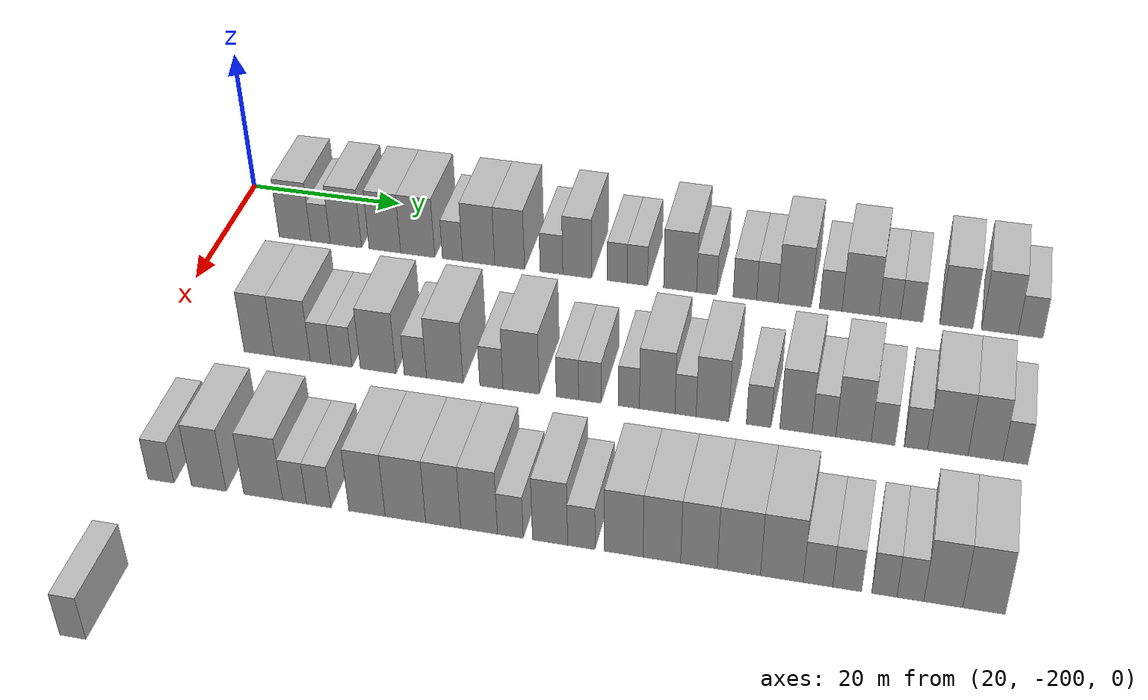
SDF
<sdf version="1.6">
 <world name="default">
  <model name="building_49">
   <static>1</static>
   <pose>25.0000 -190.7488 0 0.000000 0.000000 0.000000</pose>
   <link name="link">
    <pose>0 0 4.50 0 0 0</pose>
    <collision name="collision"><geometry><box><size>10.0000 4.2268 9.0000</size></box></geometry></collision>
    <visual name="visual">
     <cast_shadows>0</cast_shadows>
     <geometry><box><size>10.0000 4.2268 9.0000</size></box></geometry>
     <material>
      <script>
       <uri>model://HANNAS_wall/materials/scripts</uri>
       <uri>model://HANNAS_wall/materials/textures</uri>
       <name>vrc/HANNAS_wall</name>
      </script>
     </material>
    </visual>
   </link>
  </model>
  <model name="building_50">
   <static>1</static>
   <pose>25.0000 -187.3405 0 0.000000 0.000000 0.000000</pose>
   <link name="link">
    <pose>0 0 3.00 0 0 0</pose>
    <collision name="collision"><geometry><box><size>10.0000 2.5898 6.0000</size></box></geometry></collision>
    <visual name="visual">
     <cast_shadows>0</cast_shadows>
     <geometry><box><size>10.0000 2.5898 6.0000</size></box></geometry>
     <material>
      <script>
       <uri>model://HANNAS_wall/materials/scripts</uri>
       <uri>model://HANNAS_wall/materials/textures</uri>
       <name>vrc/HANNAS_wall</name>
      </script>
     </material>
    </visual>
   </link>
  </model>
  <model name="building_51">
   <static>1</static>
   <pose>25.0000 -183.9732 0 0.000000 0.000000 0.000000</pose>
   <link name="link">
    <pose>0 0 4.50 0 0 0</pose>
    <collision name="collision"><geometry><box><size>10.0000 4.1448 9.0000</size></box></geometry></collision>
    <visual name="visual">
     <cast_shadows>0</cast_shadows>
     <geometry><box><size>10.0000 4.1448 9.0000</size></box></geometry>
     <material>
      <script>
       <uri>model://HANNAS_wall/materials/scripts</uri>
       <uri>model://HANNAS_wall/materials/textures</uri>
       <name>vrc/HANNAS_wall</name>
      </script>
     </material>
    </visual>
   </link>
  </model>
  <model name="building_52">
   <static>1</static>
   <pose>25.0000 -178.8292 0 0.000000 0.000000 0.000000</pose>
   <link name="link">
    <pose>0 0 4.50 0 0 0</pose>
    <collision name="collision"><geometry><box><size>10.0000 4.1430 9.0000</size></box></geometry></collision>
    <visual name="visual">
     <cast_shadows>0</cast_shadows>
     <geometry><box><size>10.0000 4.1430 9.0000</size></box></geometry>
     <material>
      <script>
       <uri>model://HANNAS_wall/materials/scripts</uri>
       <uri>model://HANNAS_wall/materials/textures</uri>
       <name>vrc/HANNAS_wall</name>
      </script>
     </material>
    </visual>
   </link>
  </model>
  <model name="building_53">
   <static>1</static>
   <pose>25.0000 -174.5277 0 0.000000 0.000000 0.000000</pose>
   <link name="link">
    <pose>0 0 4.50 0 0 0</pose>
    <collision name="collision"><geometry><box><size>10.0000 4.4599 9.0000</size></box></geometry></collision>
    <visual name="visual">
     <cast_shadows>0</cast_shadows>
     <geometry><box><size>10.0000 4.4599 9.0000</size></box></geometry>
     <material>
      <script>
       <uri>model://HANNAS_wall/materials/scripts</uri>
       <uri>model://HANNAS_wall/materials/textures</uri>
       <name>vrc/HANNAS_wall</name>
      </script>
     </material>
    </visual>
   </link>
  </model>
  <model name="building_54">
   <static>1</static>
   <pose>25.0000 -169.9926 0 0.000000 0.000000 0.000000</pose>
   <link name="link">
    <pose>0 0 3.00 0 0 0</pose>
    <collision name="collision"><geometry><box><size>10.0000 2.6104 6.0000</size></box></geometry></collision>
    <visual name="visual">
     <cast_shadows>0</cast_shadows>
     <geometry><box><size>10.0000 2.6104 6.0000</size></box></geometry>
     <material>
      <script>
       <uri>model://HANNAS_wall/materials/scripts</uri>
       <uri>model://HANNAS_wall/materials/textures</uri>
       <name>vrc/HANNAS_wall</name>
      </script>
     </material>
    </visual>
   </link>
  </model>
  <model name="building_55">
   <static>1</static>
   <pose>25.0000 -166.6092 0 0.000000 0.000000 0.000000</pose>
   <link name="link">
    <pose>0 0 4.50 0 0 0</pose>
    <collision name="collision"><geometry><box><size>10.0000 4.1563 9.0000</size></box></geometry></collision>
    <visual name="visual">
     <cast_shadows>0</cast_shadows>
     <geometry><box><size>10.0000 4.1563 9.0000</size></box></geometry>
     <material>
      <script>
       <uri>model://HANNAS_wall/materials/scripts</uri>
       <uri>model://HANNAS_wall/materials/textures</uri>
       <name>vrc/HANNAS_wall</name>
      </script>
     </material>
    </visual>
   </link>
  </model>
  <model name="building_56">
   <static>1</static>
   <pose>25.0000 -162.6139 0 0.000000 0.000000 0.000000</pose>
   <link name="link">
    <pose>0 0 4.50 0 0 0</pose>
    <collision name="collision"><geometry><box><size>10.0000 3.8343 9.0000</size></box></geometry></collision>
    <visual name="visual">
     <cast_shadows>0</cast_shadows>
     <geometry><box><size>10.0000 3.8343 9.0000</size></box></geometry>
     <material>
      <script>
       <uri>model://HANNAS_wall/materials/scripts</uri>
       <uri>model://HANNAS_wall/materials/textures</uri>
       <name>vrc/HANNAS_wall</name>
      </script>
     </material>
    </visual>
   </link>
  </model>
  <model name="building_57">
   <static>1</static>
   <pose>25.0000 -157.2575 0 0.000000 0.000000 0.000000</pose>
   <link name="link">
    <pose>0 0 3.00 0 0 0</pose>
    <collision name="collision"><geometry><box><size>10.0000 2.8785 6.0000</size></box></geometry></collision>
    <visual name="visual">
     <cast_shadows>0</cast_shadows>
     <geometry><box><size>10.0000 2.8785 6.0000</size></box></geometry>
     <material>
      <script>
       <uri>model://HANNAS_wall/materials/scripts</uri>
       <uri>model://HANNAS_wall/materials/textures</uri>
       <name>vrc/HANNAS_wall</name>
      </script>
     </material>
    </visual>
   </link>
  </model>
  <model name="building_58">
   <static>1</static>
   <pose>25.0000 -153.9972 0 0.000000 0.000000 0.000000</pose>
   <link name="link">
    <pose>0 0 4.50 0 0 0</pose>
    <collision name="collision"><geometry><box><size>10.0000 3.6422 9.0000</size></box></geometry></collision>
    <visual name="visual">
     <cast_shadows>0</cast_shadows>
     <geometry><box><size>10.0000 3.6422 9.0000</size></box></geometry>
     <material>
      <script>
       <uri>model://HANNAS_wall/materials/scripts</uri>
       <uri>model://HANNAS_wall/materials/textures</uri>
       <name>vrc/HANNAS_wall</name>
      </script>
     </material>
    </visual>
   </link>
  </model>
  <model name="building_59">
   <static>1</static>
   <pose>25.0000 -148.9293 0 0.000000 0.000000 0.000000</pose>
   <link name="link">
    <pose>0 0 3.00 0 0 0</pose>
    <collision name="collision"><geometry><box><size>10.0000 2.4935 6.0000</size></box></geometry></collision>
    <visual name="visual">
     <cast_shadows>0</cast_shadows>
     <geometry><box><size>10.0000 2.4935 6.0000</size></box></geometry>
     <material>
      <script>
       <uri>model://HANNAS_wall/materials/scripts</uri>
       <uri>model://HANNAS_wall/materials/textures</uri>
       <name>vrc/HANNAS_wall</name>
      </script>
     </material>
    </visual>
   </link>
  </model>
  <model name="building_60">
   <static>1</static>
   <pose>25.0000 -146.4067 0 0.000000 0.000000 0.000000</pose>
   <link name="link">
    <pose>0 0 3.00 0 0 0</pose>
    <collision name="collision"><geometry><box><size>10.0000 2.5516 6.0000</size></box></geometry></collision>
    <visual name="visual">
     <cast_shadows>0</cast_shadows>
     <geometry><box><size>10.0000 2.5516 6.0000</size></box></geometry>
     <material>
      <script>
       <uri>model://HANNAS_wall/materials/scripts</uri>
       <uri>model://HANNAS_wall/materials/textures</uri>
       <name>vrc/HANNAS_wall</name>
      </script>
     </material>
    </visual>
   </link>
  </model>
  <model name="building_61">
   <static>1</static>
   <pose>25.0000 -141.0756 0 0.000000 0.000000 0.000000</pose>
   <link name="link">
    <pose>0 0 4.50 0 0 0</pose>
    <collision name="collision"><geometry><box><size>10.0000 4.1107 9.0000</size></box></geometry></collision>
    <visual name="visual">
     <cast_shadows>0</cast_shadows>
     <geometry><box><size>10.0000 4.1107 9.0000</size></box></geometry>
     <material>
      <script>
       <uri>model://HANNAS_wall/materials/scripts</uri>
       <uri>model://HANNAS_wall/materials/textures</uri>
       <name>vrc/HANNAS_wall</name>
      </script>
     </material>
    </visual>
   </link>
  </model>
  <model name="building_62">
   <static>1</static>
   <pose>25.0000 -137.7687 0 0.000000 0.000000 0.000000</pose>
   <link name="link">
    <pose>0 0 3.00 0 0 0</pose>
    <collision name="collision"><geometry><box><size>10.0000 2.5029 6.0000</size></box></geometry></collision>
    <visual name="visual">
     <cast_shadows>0</cast_shadows>
     <geometry><box><size>10.0000 2.5029 6.0000</size></box></geometry>
     <material>
      <script>
       <uri>model://HANNAS_wall/materials/scripts</uri>
       <uri>model://HANNAS_wall/materials/textures</uri>
       <name>vrc/HANNAS_wall</name>
      </script>
     </material>
    </visual>
   </link>
  </model>
  <model name="building_63">
   <static>1</static>
   <pose>25.0000 -133.0744 0 0.000000 0.000000 0.000000</pose>
   <link name="link">
    <pose>0 0 3.00 0 0 0</pose>
    <collision name="collision"><geometry><box><size>10.0000 2.8857 6.0000</size></box></geometry></collision>
    <visual name="visual">
     <cast_shadows>0</cast_shadows>
     <geometry><box><size>10.0000 2.8857 6.0000</size></box></geometry>
     <material>
      <script>
       <uri>model://HANNAS_wall/materials/scripts</uri>
       <uri>model://HANNAS_wall/materials/textures</uri>
       <name>vrc/HANNAS_wall</name>
      </script>
     </material>
    </visual>
   </link>
  </model>
  <model name="building_64">
   <static>1</static>
   <pose>25.0000 -130.3271 0 0.000000 0.000000 0.000000</pose>
   <link name="link">
    <pose>0 0 3.00 0 0 0</pose>
    <collision name="collision"><geometry><box><size>10.0000 2.6090 6.0000</size></box></geometry></collision>
    <visual name="visual">
     <cast_shadows>0</cast_shadows>
     <geometry><box><size>10.0000 2.6090 6.0000</size></box></geometry>
     <material>
      <script>
       <uri>model://HANNAS_wall/materials/scripts</uri>
       <uri>model://HANNAS_wall/materials/textures</uri>
       <name>vrc/HANNAS_wall</name>
      </script>
     </material>
    </visual>
   </link>
  </model>
  <model name="building_65">
   <static>1</static>
   <pose>25.0000 -126.9975 0 0.000000 0.000000 0.000000</pose>
   <link name="link">
    <pose>0 0 4.50 0 0 0</pose>
    <collision name="collision"><geometry><box><size>10.0000 4.0501 9.0000</size></box></geometry></collision>
    <visual name="visual">
     <cast_shadows>0</cast_shadows>
     <geometry><box><size>10.0000 4.0501 9.0000</size></box></geometry>
     <material>
      <script>
       <uri>model://HANNAS_wall/materials/scripts</uri>
       <uri>model://HANNAS_wall/materials/textures</uri>
       <name>vrc/HANNAS_wall</name>
      </script>
     </material>
    </visual>
   </link>
  </model>
  <model name="building_66">
   <static>1</static>
   <pose>25.0000 -122.6109 0 0.000000 0.000000 0.000000</pose>
   <link name="link">
    <pose>0 0 3.00 0 0 0</pose>
    <collision name="collision"><geometry><box><size>10.0000 2.7231 6.0000</size></box></geometry></collision>
    <visual name="visual">
     <cast_shadows>0</cast_shadows>
     <geometry><box><size>10.0000 2.7231 6.0000</size></box></geometry>
     <material>
      <script>
       <uri>model://HANNAS_wall/materials/scripts</uri>
       <uri>model://HANNAS_wall/materials/textures</uri>
       <name>vrc/HANNAS_wall</name>
      </script>
     </material>
    </visual>
   </link>
  </model>
  <model name="building_67">
   <static>1</static>
   <pose>25.0000 -119.0445 0 0.000000 0.000000 0.000000</pose>
   <link name="link">
    <pose>0 0 4.50 0 0 0</pose>
    <collision name="collision"><geometry><box><size>10.0000 4.4096 9.0000</size></box></geometry></collision>
    <visual name="visual">
     <cast_shadows>0</cast_shadows>
     <geometry><box><size>10.0000 4.4096 9.0000</size></box></geometry>
     <material>
      <script>
       <uri>model://HANNAS_wall/materials/scripts</uri>
       <uri>model://HANNAS_wall/materials/textures</uri>
       <name>vrc/HANNAS_wall</name>
      </script>
     </material>
    </visual>
   </link>
  </model>
  <model name="building_68">
   <static>1</static>
   <pose>25.0000 -115.5392 0 0.000000 0.000000 0.000000</pose>
   <link name="link">
    <pose>0 0 3.00 0 0 0</pose>
    <collision name="collision"><geometry><box><size>10.0000 2.6010 6.0000</size></box></geometry></collision>
    <visual name="visual">
     <cast_shadows>0</cast_shadows>
     <geometry><box><size>10.0000 2.6010 6.0000</size></box></geometry>
     <material>
      <script>
       <uri>model://HANNAS_wall/materials/scripts</uri>
       <uri>model://HANNAS_wall/materials/textures</uri>
       <name>vrc/HANNAS_wall</name>
      </script>
     </material>
    </visual>
   </link>
  </model>
  <model name="building_69">
   <static>1</static>
   <pose>25.0000 -112.8954 0 0.000000 0.000000 0.000000</pose>
   <link name="link">
    <pose>0 0 3.00 0 0 0</pose>
    <collision name="collision"><geometry><box><size>10.0000 2.6867 6.0000</size></box></geometry></collision>
    <visual name="visual">
     <cast_shadows>0</cast_shadows>
     <geometry><box><size>10.0000 2.6867 6.0000</size></box></geometry>
     <material>
      <script>
       <uri>model://HANNAS_wall/materials/scripts</uri>
       <uri>model://HANNAS_wall/materials/textures</uri>
       <name>vrc/HANNAS_wall</name>
      </script>
     </material>
    </visual>
   </link>
  </model>
  <model name="building_70">
   <static>1</static>
   <pose>25.0000 -107.5846 0 0.000000 0.000000 0.000000</pose>
   <link name="link">
    <pose>0 0 4.50 0 0 0</pose>
    <collision name="collision"><geometry><box><size>10.0000 3.9348 9.0000</size></box></geometry></collision>
    <visual name="visual">
     <cast_shadows>0</cast_shadows>
     <geometry><box><size>10.0000 3.9348 9.0000</size></box></geometry>
     <material>
      <script>
       <uri>model://HANNAS_wall/materials/scripts</uri>
       <uri>model://HANNAS_wall/materials/textures</uri>
       <name>vrc/HANNAS_wall</name>
      </script>
     </material>
    </visual>
   </link>
  </model>
  <model name="building_71">
   <static>1</static>
   <pose>25.0000 -102.4750 0 0.000000 0.000000 0.000000</pose>
   <link name="link">
    <pose>0 0 4.50 0 0 0</pose>
    <collision name="collision"><geometry><box><size>10.0000 4.2845 9.0000</size></box></geometry></collision>
    <visual name="visual">
     <cast_shadows>0</cast_shadows>
     <geometry><box><size>10.0000 4.2845 9.0000</size></box></geometry>
     <material>
      <script>
       <uri>model://HANNAS_wall/materials/scripts</uri>
       <uri>model://HANNAS_wall/materials/textures</uri>
       <name>vrc/HANNAS_wall</name>
      </script>
     </material>
    </visual>
   </link>
  </model>
  <model name="building_72">
   <static>1</static>
   <pose>25.0000 -98.8671 0 0.000000 0.000000 0.000000</pose>
   <link name="link">
    <pose>0 0 3.00 0 0 0</pose>
    <collision name="collision"><geometry><box><size>10.0000 2.9314 6.0000</size></box></geometry></collision>
    <visual name="visual">
     <cast_shadows>0</cast_shadows>
     <geometry><box><size>10.0000 2.9314 6.0000</size></box></geometry>
     <material>
      <script>
       <uri>model://HANNAS_wall/materials/scripts</uri>
       <uri>model://HANNAS_wall/materials/textures</uri>
       <name>vrc/HANNAS_wall</name>
      </script>
     </material>
    </visual>
   </link>
  </model>
  <model name="building_248">
   <static>1</static>
   <pose>47.0000 -187.2300 0 0.000000 0.000000 0.000000</pose>
   <link name="link">
    <pose>0 0 4.50 0 0 0</pose>
    <collision name="collision"><geometry><box><size>10.0000 3.7077 9.0000</size></box></geometry></collision>
    <visual name="visual">
     <cast_shadows>0</cast_shadows>
     <geometry><box><size>10.0000 3.7077 9.0000</size></box></geometry>
     <material>
      <script>
       <uri>model://HANNAS_wall/materials/scripts</uri>
       <uri>model://HANNAS_wall/materials/textures</uri>
       <name>vrc/HANNAS_wall</name>
      </script>
     </material>
    </visual>
   </link>
  </model>
  <model name="building_249">
   <static>1</static>
   <pose>47.0000 -183.1564 0 0.000000 0.000000 0.000000</pose>
   <link name="link">
    <pose>0 0 4.50 0 0 0</pose>
    <collision name="collision"><geometry><box><size>10.0000 4.4394 9.0000</size></box></geometry></collision>
    <visual name="visual">
     <cast_shadows>0</cast_shadows>
     <geometry><box><size>10.0000 4.4394 9.0000</size></box></geometry>
     <material>
      <script>
       <uri>model://HANNAS_wall/materials/scripts</uri>
       <uri>model://HANNAS_wall/materials/textures</uri>
       <name>vrc/HANNAS_wall</name>
      </script>
     </material>
    </visual>
   </link>
  </model>
  <model name="building_250">
   <static>1</static>
   <pose>47.0000 -179.6723 0 0.000000 0.000000 0.000000</pose>
   <link name="link">
    <pose>0 0 3.00 0 0 0</pose>
    <collision name="collision"><geometry><box><size>10.0000 2.5289 6.0000</size></box></geometry></collision>
    <visual name="visual">
     <cast_shadows>0</cast_shadows>
     <geometry><box><size>10.0000 2.5289 6.0000</size></box></geometry>
     <material>
      <script>
       <uri>model://HANNAS_wall/materials/scripts</uri>
       <uri>model://HANNAS_wall/materials/textures</uri>
       <name>vrc/HANNAS_wall</name>
      </script>
     </material>
    </visual>
   </link>
  </model>
  <model name="building_251">
   <static>1</static>
   <pose>47.0000 -177.1159 0 0.000000 0.000000 0.000000</pose>
   <link name="link">
    <pose>0 0 3.00 0 0 0</pose>
    <collision name="collision"><geometry><box><size>10.0000 2.5838 6.0000</size></box></geometry></collision>
    <visual name="visual">
     <cast_shadows>0</cast_shadows>
     <geometry><box><size>10.0000 2.5838 6.0000</size></box></geometry>
     <material>
      <script>
       <uri>model://HANNAS_wall/materials/scripts</uri>
       <uri>model://HANNAS_wall/materials/textures</uri>
       <name>vrc/HANNAS_wall</name>
      </script>
     </material>
    </visual>
   </link>
  </model>
  <model name="building_252">
   <static>1</static>
   <pose>47.0000 -172.6700 0 0.000000 0.000000 0.000000</pose>
   <link name="link">
    <pose>0 0 4.50 0 0 0</pose>
    <collision name="collision"><geometry><box><size>10.0000 4.3080 9.0000</size></box></geometry></collision>
    <visual name="visual">
     <cast_shadows>0</cast_shadows>
     <geometry><box><size>10.0000 4.3080 9.0000</size></box></geometry>
     <material>
      <script>
       <uri>model://HANNAS_wall/materials/scripts</uri>
       <uri>model://HANNAS_wall/materials/textures</uri>
       <name>vrc/HANNAS_wall</name>
      </script>
     </material>
    </visual>
   </link>
  </model>
  <model name="building_253">
   <static>1</static>
   <pose>47.0000 -168.1766 0 0.000000 0.000000 0.000000</pose>
   <link name="link">
    <pose>0 0 3.00 0 0 0</pose>
    <collision name="collision"><geometry><box><size>10.0000 2.6789 6.0000</size></box></geometry></collision>
    <visual name="visual">
     <cast_shadows>0</cast_shadows>
     <geometry><box><size>10.0000 2.6789 6.0000</size></box></geometry>
     <material>
      <script>
       <uri>model://HANNAS_wall/materials/scripts</uri>
       <uri>model://HANNAS_wall/materials/textures</uri>
       <name>vrc/HANNAS_wall</name>
      </script>
     </material>
    </visual>
   </link>
  </model>
  <model name="building_254">
   <static>1</static>
   <pose>47.0000 -164.6546 0 0.000000 0.000000 0.000000</pose>
   <link name="link">
    <pose>0 0 4.50 0 0 0</pose>
    <collision name="collision"><geometry><box><size>10.0000 4.3651 9.0000</size></box></geometry></collision>
    <visual name="visual">
     <cast_shadows>0</cast_shadows>
     <geometry><box><size>10.0000 4.3651 9.0000</size></box></geometry>
     <material>
      <script>
       <uri>model://HANNAS_wall/materials/scripts</uri>
       <uri>model://HANNAS_wall/materials/textures</uri>
       <name>vrc/HANNAS_wall</name>
      </script>
     </material>
    </visual>
   </link>
  </model>
  <model name="building_255">
   <static>1</static>
   <pose>47.0000 -159.1053 0 0.000000 0.000000 0.000000</pose>
   <link name="link">
    <pose>0 0 3.00 0 0 0</pose>
    <collision name="collision"><geometry><box><size>10.0000 2.7335 6.0000</size></box></geometry></collision>
    <visual name="visual">
     <cast_shadows>0</cast_shadows>
     <geometry><box><size>10.0000 2.7335 6.0000</size></box></geometry>
     <material>
      <script>
       <uri>model://HANNAS_wall/materials/scripts</uri>
       <uri>model://HANNAS_wall/materials/textures</uri>
       <name>vrc/HANNAS_wall</name>
      </script>
     </material>
    </visual>
   </link>
  </model>
  <model name="building_256">
   <static>1</static>
   <pose>47.0000 -155.6019 0 0.000000 0.000000 0.000000</pose>
   <link name="link">
    <pose>0 0 4.50 0 0 0</pose>
    <collision name="collision"><geometry><box><size>10.0000 4.2733 9.0000</size></box></geometry></collision>
    <visual name="visual">
     <cast_shadows>0</cast_shadows>
     <geometry><box><size>10.0000 4.2733 9.0000</size></box></geometry>
     <material>
      <script>
       <uri>model://HANNAS_wall/materials/scripts</uri>
       <uri>model://HANNAS_wall/materials/textures</uri>
       <name>vrc/HANNAS_wall</name>
      </script>
     </material>
    </visual>
   </link>
  </model>
  <model name="building_257">
   <static>1</static>
   <pose>47.0000 -150.1625 0 0.000000 0.000000 0.000000</pose>
   <link name="link">
    <pose>0 0 3.00 0 0 0</pose>
    <collision name="collision"><geometry><box><size>10.0000 2.6054 6.0000</size></box></geometry></collision>
    <visual name="visual">
     <cast_shadows>0</cast_shadows>
     <geometry><box><size>10.0000 2.6054 6.0000</size></box></geometry>
     <material>
      <script>
       <uri>model://HANNAS_wall/materials/scripts</uri>
       <uri>model://HANNAS_wall/materials/textures</uri>
       <name>vrc/HANNAS_wall</name>
      </script>
     </material>
    </visual>
   </link>
  </model>
  <model name="building_258">
   <static>1</static>
   <pose>47.0000 -147.5531 0 0.000000 0.000000 0.000000</pose>
   <link name="link">
    <pose>0 0 3.00 0 0 0</pose>
    <collision name="collision"><geometry><box><size>10.0000 2.6135 6.0000</size></box></geometry></collision>
    <visual name="visual">
     <cast_shadows>0</cast_shadows>
     <geometry><box><size>10.0000 2.6135 6.0000</size></box></geometry>
     <material>
      <script>
       <uri>model://HANNAS_wall/materials/scripts</uri>
       <uri>model://HANNAS_wall/materials/textures</uri>
       <name>vrc/HANNAS_wall</name>
      </script>
     </material>
    </visual>
   </link>
  </model>
  <model name="building_259">
   <static>1</static>
   <pose>47.0000 -143.0351 0 0.000000 0.000000 0.000000</pose>
   <link name="link">
    <pose>0 0 3.00 0 0 0</pose>
    <collision name="collision"><geometry><box><size>10.0000 2.4225 6.0000</size></box></geometry></collision>
    <visual name="visual">
     <cast_shadows>0</cast_shadows>
     <geometry><box><size>10.0000 2.4225 6.0000</size></box></geometry>
     <material>
      <script>
       <uri>model://HANNAS_wall/materials/scripts</uri>
       <uri>model://HANNAS_wall/materials/textures</uri>
       <name>vrc/HANNAS_wall</name>
      </script>
     </material>
    </visual>
   </link>
  </model>
  <model name="building_260">
   <static>1</static>
   <pose>47.0000 -139.7881 0 0.000000 0.000000 0.000000</pose>
   <link name="link">
    <pose>0 0 4.50 0 0 0</pose>
    <collision name="collision"><geometry><box><size>10.0000 4.0715 9.0000</size></box></geometry></collision>
    <visual name="visual">
     <cast_shadows>0</cast_shadows>
     <geometry><box><size>10.0000 4.0715 9.0000</size></box></geometry>
     <material>
      <script>
       <uri>model://HANNAS_wall/materials/scripts</uri>
       <uri>model://HANNAS_wall/materials/textures</uri>
       <name>vrc/HANNAS_wall</name>
      </script>
     </material>
    </visual>
   </link>
  </model>
  <model name="building_261">
   <static>1</static>
   <pose>47.0000 -136.5396 0 0.000000 0.000000 0.000000</pose>
   <link name="link">
    <pose>0 0 3.00 0 0 0</pose>
    <collision name="collision"><geometry><box><size>10.0000 2.4255 6.0000</size></box></geometry></collision>
    <visual name="visual">
     <cast_shadows>0</cast_shadows>
     <geometry><box><size>10.0000 2.4255 6.0000</size></box></geometry>
     <material>
      <script>
       <uri>model://HANNAS_wall/materials/scripts</uri>
       <uri>model://HANNAS_wall/materials/textures</uri>
       <name>vrc/HANNAS_wall</name>
      </script>
     </material>
    </visual>
   </link>
  </model>
  <model name="building_262">
   <static>1</static>
   <pose>47.0000 -133.4758 0 0.000000 0.000000 0.000000</pose>
   <link name="link">
    <pose>0 0 4.50 0 0 0</pose>
    <collision name="collision"><geometry><box><size>10.0000 3.7020 9.0000</size></box></geometry></collision>
    <visual name="visual">
     <cast_shadows>0</cast_shadows>
     <geometry><box><size>10.0000 3.7020 9.0000</size></box></geometry>
     <material>
      <script>
       <uri>model://HANNAS_wall/materials/scripts</uri>
       <uri>model://HANNAS_wall/materials/textures</uri>
       <name>vrc/HANNAS_wall</name>
      </script>
     </material>
    </visual>
   </link>
  </model>
  <model name="building_263">
   <static>1</static>
   <pose>47.0000 -128.2415 0 0.000000 0.000000 0.000000</pose>
   <link name="link">
    <pose>0 0 3.00 0 0 0</pose>
    <collision name="collision"><geometry><box><size>10.0000 2.7666 6.0000</size></box></geometry></collision>
    <visual name="visual">
     <cast_shadows>0</cast_shadows>
     <geometry><box><size>10.0000 2.7666 6.0000</size></box></geometry>
     <material>
      <script>
       <uri>model://HANNAS_wall/materials/scripts</uri>
       <uri>model://HANNAS_wall/materials/textures</uri>
       <name>vrc/HANNAS_wall</name>
      </script>
     </material>
    </visual>
   </link>
  </model>
  <model name="building_264">
   <static>1</static>
   <pose>47.0000 -124.0577 0 0.000000 0.000000 0.000000</pose>
   <link name="link">
    <pose>0 0 4.50 0 0 0</pose>
    <collision name="collision"><geometry><box><size>10.0000 3.6010 9.0000</size></box></geometry></collision>
    <visual name="visual">
     <cast_shadows>0</cast_shadows>
     <geometry><box><size>10.0000 3.6010 9.0000</size></box></geometry>
     <material>
      <script>
       <uri>model://HANNAS_wall/materials/scripts</uri>
       <uri>model://HANNAS_wall/materials/textures</uri>
       <name>vrc/HANNAS_wall</name>
      </script>
     </material>
    </visual>
   </link>
  </model>
  <model name="building_265">
   <static>1</static>
   <pose>47.0000 -120.9285 0 0.000000 0.000000 0.000000</pose>
   <link name="link">
    <pose>0 0 3.00 0 0 0</pose>
    <collision name="collision"><geometry><box><size>10.0000 2.6574 6.0000</size></box></geometry></collision>
    <visual name="visual">
     <cast_shadows>0</cast_shadows>
     <geometry><box><size>10.0000 2.6574 6.0000</size></box></geometry>
     <material>
      <script>
       <uri>model://HANNAS_wall/materials/scripts</uri>
       <uri>model://HANNAS_wall/materials/textures</uri>
       <name>vrc/HANNAS_wall</name>
      </script>
     </material>
    </visual>
   </link>
  </model>
  <model name="building_266">
   <static>1</static>
   <pose>47.0000 -117.6517 0 0.000000 0.000000 0.000000</pose>
   <link name="link">
    <pose>0 0 4.50 0 0 0</pose>
    <collision name="collision"><geometry><box><size>10.0000 3.8962 9.0000</size></box></geometry></collision>
    <visual name="visual">
     <cast_shadows>0</cast_shadows>
     <geometry><box><size>10.0000 3.8962 9.0000</size></box></geometry>
     <material>
      <script>
       <uri>model://HANNAS_wall/materials/scripts</uri>
       <uri>model://HANNAS_wall/materials/textures</uri>
       <name>vrc/HANNAS_wall</name>
      </script>
     </material>
    </visual>
   </link>
  </model>
  <model name="building_267">
   <static>1</static>
   <pose>47.0000 -114.3830 0 0.000000 0.000000 0.000000</pose>
   <link name="link">
    <pose>0 0 3.00 0 0 0</pose>
    <collision name="collision"><geometry><box><size>10.0000 2.6411 6.0000</size></box></geometry></collision>
    <visual name="visual">
     <cast_shadows>0</cast_shadows>
     <geometry><box><size>10.0000 2.6411 6.0000</size></box></geometry>
     <material>
      <script>
       <uri>model://HANNAS_wall/materials/scripts</uri>
       <uri>model://HANNAS_wall/materials/textures</uri>
       <name>vrc/HANNAS_wall</name>
      </script>
     </material>
    </visual>
   </link>
  </model>
  <model name="building_268">
   <static>1</static>
   <pose>47.0000 -110.7816 0 0.000000 0.000000 0.000000</pose>
   <link name="link">
    <pose>0 0 3.00 0 0 0</pose>
    <collision name="collision"><geometry><box><size>10.0000 2.5617 6.0000</size></box></geometry></collision>
    <visual name="visual">
     <cast_shadows>0</cast_shadows>
     <geometry><box><size>10.0000 2.5617 6.0000</size></box></geometry>
     <material>
      <script>
       <uri>model://HANNAS_wall/materials/scripts</uri>
       <uri>model://HANNAS_wall/materials/textures</uri>
       <name>vrc/HANNAS_wall</name>
      </script>
     </material>
    </visual>
   </link>
  </model>
  <model name="building_269">
   <static>1</static>
   <pose>47.0000 -107.3019 0 0.000000 0.000000 0.000000</pose>
   <link name="link">
    <pose>0 0 4.50 0 0 0</pose>
    <collision name="collision"><geometry><box><size>10.0000 4.3977 9.0000</size></box></geometry></collision>
    <visual name="visual">
     <cast_shadows>0</cast_shadows>
     <geometry><box><size>10.0000 4.3977 9.0000</size></box></geometry>
     <material>
      <script>
       <uri>model://HANNAS_wall/materials/scripts</uri>
       <uri>model://HANNAS_wall/materials/textures</uri>
       <name>vrc/HANNAS_wall</name>
      </script>
     </material>
    </visual>
   </link>
  </model>
  <model name="building_270">
   <static>1</static>
   <pose>47.0000 -103.2085 0 0.000000 0.000000 0.000000</pose>
   <link name="link">
    <pose>0 0 4.50 0 0 0</pose>
    <collision name="collision"><geometry><box><size>10.0000 3.7891 9.0000</size></box></geometry></collision>
    <visual name="visual">
     <cast_shadows>0</cast_shadows>
     <geometry><box><size>10.0000 3.7891 9.0000</size></box></geometry>
     <material>
      <script>
       <uri>model://HANNAS_wall/materials/scripts</uri>
       <uri>model://HANNAS_wall/materials/textures</uri>
       <name>vrc/HANNAS_wall</name>
      </script>
     </material>
    </visual>
   </link>
  </model>
  <model name="building_271">
   <static>1</static>
   <pose>47.0000 -99.9761 0 0.000000 0.000000 0.000000</pose>
   <link name="link">
    <pose>0 0 3.00 0 0 0</pose>
    <collision name="collision"><geometry><box><size>10.0000 2.6755 6.0000</size></box></geometry></collision>
    <visual name="visual">
     <cast_shadows>0</cast_shadows>
     <geometry><box><size>10.0000 2.6755 6.0000</size></box></geometry>
     <material>
      <script>
       <uri>model://HANNAS_wall/materials/scripts</uri>
       <uri>model://HANNAS_wall/materials/textures</uri>
       <name>vrc/HANNAS_wall</name>
      </script>
     </material>
    </visual>
   </link>
  </model>
  <model name="building_448">
   <static>1</static>
   <pose>69.0000 -190.0955 0 0.000000 0.000000 0.000000</pose>
   <link name="link">
    <pose>0 0 3.00 0 0 0</pose>
    <collision name="collision"><geometry><box><size>10.0000 2.9654 6.0000</size></box></geometry></collision>
    <visual name="visual">
     <cast_shadows>0</cast_shadows>
     <geometry><box><size>10.0000 2.9654 6.0000</size></box></geometry>
     <material>
      <script>
       <uri>model://HANNAS_wall/materials/scripts</uri>
       <uri>model://HANNAS_wall/materials/textures</uri>
       <name>vrc/HANNAS_wall</name>
      </script>
     </material>
    </visual>
   </link>
  </model>
  <model name="building_449">
   <static>1</static>
   <pose>69.0000 -184.6259 0 0.000000 0.000000 0.000000</pose>
   <link name="link">
    <pose>0 0 4.50 0 0 0</pose>
    <collision name="collision"><geometry><box><size>10.0000 3.9738 9.0000</size></box></geometry></collision>
    <visual name="visual">
     <cast_shadows>0</cast_shadows>
     <geometry><box><size>10.0000 3.9738 9.0000</size></box></geometry>
     <material>
      <script>
       <uri>model://HANNAS_wall/materials/scripts</uri>
       <uri>model://HANNAS_wall/materials/textures</uri>
       <name>vrc/HANNAS_wall</name>
      </script>
     </material>
    </visual>
   </link>
  </model>
  <model name="building_450">
   <static>1</static>
   <pose>69.0000 -178.4470 0 0.000000 0.000000 0.000000</pose>
   <link name="link">
    <pose>0 0 4.50 0 0 0</pose>
    <collision name="collision"><geometry><box><size>10.0000 4.3841 9.0000</size></box></geometry></collision>
    <visual name="visual">
     <cast_shadows>0</cast_shadows>
     <geometry><box><size>10.0000 4.3841 9.0000</size></box></geometry>
     <material>
      <script>
       <uri>model://HANNAS_wall/materials/scripts</uri>
       <uri>model://HANNAS_wall/materials/textures</uri>
       <name>vrc/HANNAS_wall</name>
      </script>
     </material>
    </visual>
   </link>
  </model>
  <model name="building_451">
   <static>1</static>
   <pose>69.0000 -174.9179 0 0.000000 0.000000 0.000000</pose>
   <link name="link">
    <pose>0 0 3.00 0 0 0</pose>
    <collision name="collision"><geometry><box><size>10.0000 2.6741 6.0000</size></box></geometry></collision>
    <visual name="visual">
     <cast_shadows>0</cast_shadows>
     <geometry><box><size>10.0000 2.6741 6.0000</size></box></geometry>
     <material>
      <script>
       <uri>model://HANNAS_wall/materials/scripts</uri>
       <uri>model://HANNAS_wall/materials/textures</uri>
       <name>vrc/HANNAS_wall</name>
      </script>
     </material>
    </visual>
   </link>
  </model>
  <model name="building_452">
   <static>1</static>
   <pose>69.0000 -172.2174 0 0.000000 0.000000 0.000000</pose>
   <link name="link">
    <pose>0 0 3.00 0 0 0</pose>
    <collision name="collision"><geometry><box><size>10.0000 2.7268 6.0000</size></box></geometry></collision>
    <visual name="visual">
     <cast_shadows>0</cast_shadows>
     <geometry><box><size>10.0000 2.7268 6.0000</size></box></geometry>
     <material>
      <script>
       <uri>model://HANNAS_wall/materials/scripts</uri>
       <uri>model://HANNAS_wall/materials/textures</uri>
       <name>vrc/HANNAS_wall</name>
      </script>
     </material>
    </visual>
   </link>
  </model>
  <model name="building_453">
   <static>1</static>
   <pose>69.0000 -166.8526 0 0.000000 0.000000 0.000000</pose>
   <link name="link">
    <pose>0 0 4.50 0 0 0</pose>
    <collision name="collision"><geometry><box><size>10.0000 4.0029 9.0000</size></box></geometry></collision>
    <visual name="visual">
     <cast_shadows>0</cast_shadows>
     <geometry><box><size>10.0000 4.0029 9.0000</size></box></geometry>
     <material>
      <script>
       <uri>model://HANNAS_wall/materials/scripts</uri>
       <uri>model://HANNAS_wall/materials/textures</uri>
       <name>vrc/HANNAS_wall</name>
      </script>
     </material>
    </visual>
   </link>
  </model>
  <model name="building_454">
   <static>1</static>
   <pose>69.0000 -162.6219 0 0.000000 0.000000 0.000000</pose>
   <link name="link">
    <pose>0 0 4.50 0 0 0</pose>
    <collision name="collision"><geometry><box><size>10.0000 4.4585 9.0000</size></box></geometry></collision>
    <visual name="visual">
     <cast_shadows>0</cast_shadows>
     <geometry><box><size>10.0000 4.4585 9.0000</size></box></geometry>
     <material>
      <script>
       <uri>model://HANNAS_wall/materials/scripts</uri>
       <uri>model://HANNAS_wall/materials/textures</uri>
       <name>vrc/HANNAS_wall</name>
      </script>
     </material>
    </visual>
   </link>
  </model>
  <model name="building_455">
   <static>1</static>
   <pose>69.0000 -158.4774 0 0.000000 0.000000 0.000000</pose>
   <link name="link">
    <pose>0 0 4.50 0 0 0</pose>
    <collision name="collision"><geometry><box><size>10.0000 3.8306 9.0000</size></box></geometry></collision>
    <visual name="visual">
     <cast_shadows>0</cast_shadows>
     <geometry><box><size>10.0000 3.8306 9.0000</size></box></geometry>
     <material>
      <script>
       <uri>model://HANNAS_wall/materials/scripts</uri>
       <uri>model://HANNAS_wall/materials/textures</uri>
       <name>vrc/HANNAS_wall</name>
      </script>
     </material>
    </visual>
   </link>
  </model>
  <model name="building_456">
   <static>1</static>
   <pose>69.0000 -154.5797 0 0.000000 0.000000 0.000000</pose>
   <link name="link">
    <pose>0 0 4.50 0 0 0</pose>
    <collision name="collision"><geometry><box><size>10.0000 3.9648 9.0000</size></box></geometry></collision>
    <visual name="visual">
     <cast_shadows>0</cast_shadows>
     <geometry><box><size>10.0000 3.9648 9.0000</size></box></geometry>
     <material>
      <script>
       <uri>model://HANNAS_wall/materials/scripts</uri>
       <uri>model://HANNAS_wall/materials/textures</uri>
       <name>vrc/HANNAS_wall</name>
      </script>
     </material>
    </visual>
   </link>
  </model>
  <model name="building_457">
   <static>1</static>
   <pose>69.0000 -151.2078 0 0.000000 0.000000 0.000000</pose>
   <link name="link">
    <pose>0 0 3.00 0 0 0</pose>
    <collision name="collision"><geometry><box><size>10.0000 2.7789 6.0000</size></box></geometry></collision>
    <visual name="visual">
     <cast_shadows>0</cast_shadows>
     <geometry><box><size>10.0000 2.7789 6.0000</size></box></geometry>
     <material>
      <script>
       <uri>model://HANNAS_wall/materials/scripts</uri>
       <uri>model://HANNAS_wall/materials/textures</uri>
       <name>vrc/HANNAS_wall</name>
      </script>
     </material>
    </visual>
   </link>
  </model>
  <model name="building_458">
   <static>1</static>
   <pose>69.0000 -146.9456 0 0.000000 0.000000 0.000000</pose>
   <link name="link">
    <pose>0 0 4.50 0 0 0</pose>
    <collision name="collision"><geometry><box><size>10.0000 3.7454 9.0000</size></box></geometry></collision>
    <visual name="visual">
     <cast_shadows>0</cast_shadows>
     <geometry><box><size>10.0000 3.7454 9.0000</size></box></geometry>
     <material>
      <script>
       <uri>model://HANNAS_wall/materials/scripts</uri>
       <uri>model://HANNAS_wall/materials/textures</uri>
       <name>vrc/HANNAS_wall</name>
      </script>
     </material>
    </visual>
   </link>
  </model>
  <model name="building_459">
   <static>1</static>
   <pose>69.0000 -143.6171 0 0.000000 0.000000 0.000000</pose>
   <link name="link">
    <pose>0 0 3.00 0 0 0</pose>
    <collision name="collision"><geometry><box><size>10.0000 2.9116 6.0000</size></box></geometry></collision>
    <visual name="visual">
     <cast_shadows>0</cast_shadows>
     <geometry><box><size>10.0000 2.9116 6.0000</size></box></geometry>
     <material>
      <script>
       <uri>model://HANNAS_wall/materials/scripts</uri>
       <uri>model://HANNAS_wall/materials/textures</uri>
       <name>vrc/HANNAS_wall</name>
      </script>
     </material>
    </visual>
   </link>
  </model>
  <model name="building_460">
   <static>1</static>
   <pose>69.0000 -139.1384 0 0.000000 0.000000 0.000000</pose>
   <link name="link">
    <pose>0 0 4.50 0 0 0</pose>
    <collision name="collision"><geometry><box><size>10.0000 4.0459 9.0000</size></box></geometry></collision>
    <visual name="visual">
     <cast_shadows>0</cast_shadows>
     <geometry><box><size>10.0000 4.0459 9.0000</size></box></geometry>
     <material>
      <script>
       <uri>model://HANNAS_wall/materials/scripts</uri>
       <uri>model://HANNAS_wall/materials/textures</uri>
       <name>vrc/HANNAS_wall</name>
      </script>
     </material>
    </visual>
   </link>
  </model>
  <model name="building_461">
   <static>1</static>
   <pose>69.0000 -135.1468 0 0.000000 0.000000 0.000000</pose>
   <link name="link">
    <pose>0 0 4.50 0 0 0</pose>
    <collision name="collision"><geometry><box><size>10.0000 3.9371 9.0000</size></box></geometry></collision>
    <visual name="visual">
     <cast_shadows>0</cast_shadows>
     <geometry><box><size>10.0000 3.9371 9.0000</size></box></geometry>
     <material>
      <script>
       <uri>model://HANNAS_wall/materials/scripts</uri>
       <uri>model://HANNAS_wall/materials/textures</uri>
       <name>vrc/HANNAS_wall</name>
      </script>
     </material>
    </visual>
   </link>
  </model>
  <model name="building_462">
   <static>1</static>
   <pose>69.0000 -131.2688 0 0.000000 0.000000 0.000000</pose>
   <link name="link">
    <pose>0 0 4.50 0 0 0</pose>
    <collision name="collision"><geometry><box><size>10.0000 3.8190 9.0000</size></box></geometry></collision>
    <visual name="visual">
     <cast_shadows>0</cast_shadows>
     <geometry><box><size>10.0000 3.8190 9.0000</size></box></geometry>
     <material>
      <script>
       <uri>model://HANNAS_wall/materials/scripts</uri>
       <uri>model://HANNAS_wall/materials/textures</uri>
       <name>vrc/HANNAS_wall</name>
      </script>
     </material>
    </visual>
   </link>
  </model>
  <model name="building_463">
   <static>1</static>
   <pose>69.0000 -127.1362 0 0.000000 0.000000 0.000000</pose>
   <link name="link">
    <pose>0 0 4.50 0 0 0</pose>
    <collision name="collision"><geometry><box><size>10.0000 4.4463 9.0000</size></box></geometry></collision>
    <visual name="visual">
     <cast_shadows>0</cast_shadows>
     <geometry><box><size>10.0000 4.4463 9.0000</size></box></geometry>
     <material>
      <script>
       <uri>model://HANNAS_wall/materials/scripts</uri>
       <uri>model://HANNAS_wall/materials/textures</uri>
       <name>vrc/HANNAS_wall</name>
      </script>
     </material>
    </visual>
   </link>
  </model>
  <model name="building_464">
   <static>1</static>
   <pose>69.0000 -122.7185 0 0.000000 0.000000 0.000000</pose>
   <link name="link">
    <pose>0 0 4.50 0 0 0</pose>
    <collision name="collision"><geometry><box><size>10.0000 4.3891 9.0000</size></box></geometry></collision>
    <visual name="visual">
     <cast_shadows>0</cast_shadows>
     <geometry><box><size>10.0000 4.3891 9.0000</size></box></geometry>
     <material>
      <script>
       <uri>model://HANNAS_wall/materials/scripts</uri>
       <uri>model://HANNAS_wall/materials/textures</uri>
       <name>vrc/HANNAS_wall</name>
      </script>
     </material>
    </visual>
   </link>
  </model>
  <model name="building_465">
   <static>1</static>
   <pose>69.0000 -119.0305 0 0.000000 0.000000 0.000000</pose>
   <link name="link">
    <pose>0 0 3.00 0 0 0</pose>
    <collision name="collision"><geometry><box><size>10.0000 2.9870 6.0000</size></box></geometry></collision>
    <visual name="visual">
     <cast_shadows>0</cast_shadows>
     <geometry><box><size>10.0000 2.9870 6.0000</size></box></geometry>
     <material>
      <script>
       <uri>model://HANNAS_wall/materials/scripts</uri>
       <uri>model://HANNAS_wall/materials/textures</uri>
       <name>vrc/HANNAS_wall</name>
      </script>
     </material>
    </visual>
   </link>
  </model>
  <model name="building_466">
   <static>1</static>
   <pose>69.0000 -116.0693 0 0.000000 0.000000 0.000000</pose>
   <link name="link">
    <pose>0 0 3.00 0 0 0</pose>
    <collision name="collision"><geometry><box><size>10.0000 2.9353 6.0000</size></box></geometry></collision>
    <visual name="visual">
     <cast_shadows>0</cast_shadows>
     <geometry><box><size>10.0000 2.9353 6.0000</size></box></geometry>
     <material>
      <script>
       <uri>model://HANNAS_wall/materials/scripts</uri>
       <uri>model://HANNAS_wall/materials/textures</uri>
       <name>vrc/HANNAS_wall</name>
      </script>
     </material>
    </visual>
   </link>
  </model>
  <model name="building_467">
   <static>1</static>
   <pose>69.0000 -112.3358 0 0.000000 0.000000 0.000000</pose>
   <link name="link">
    <pose>0 0 3.00 0 0 0</pose>
    <collision name="collision"><geometry><box><size>10.0000 2.5317 6.0000</size></box></geometry></collision>
    <visual name="visual">
     <cast_shadows>0</cast_shadows>
     <geometry><box><size>10.0000 2.5317 6.0000</size></box></geometry>
     <material>
      <script>
       <uri>model://HANNAS_wall/materials/scripts</uri>
       <uri>model://HANNAS_wall/materials/textures</uri>
       <name>vrc/HANNAS_wall</name>
      </script>
     </material>
    </visual>
   </link>
  </model>
  <model name="building_468">
   <static>1</static>
   <pose>69.0000 -109.7179 0 0.000000 0.000000 0.000000</pose>
   <link name="link">
    <pose>0 0 3.00 0 0 0</pose>
    <collision name="collision"><geometry><box><size>10.0000 2.7041 6.0000</size></box></geometry></collision>
    <visual name="visual">
     <cast_shadows>0</cast_shadows>
     <geometry><box><size>10.0000 2.7041 6.0000</size></box></geometry>
     <material>
      <script>
       <uri>model://HANNAS_wall/materials/scripts</uri>
       <uri>model://HANNAS_wall/materials/textures</uri>
       <name>vrc/HANNAS_wall</name>
      </script>
     </material>
    </visual>
   </link>
  </model>
  <model name="building_469">
   <static>1</static>
   <pose>69.0000 -106.4320 0 0.000000 0.000000 0.000000</pose>
   <link name="link">
    <pose>0 0 4.50 0 0 0</pose>
    <collision name="collision"><geometry><box><size>10.0000 3.8677 9.0000</size></box></geometry></collision>
    <visual name="visual">
     <cast_shadows>0</cast_shadows>
     <geometry><box><size>10.0000 3.8677 9.0000</size></box></geometry>
     <material>
      <script>
       <uri>model://HANNAS_wall/materials/scripts</uri>
       <uri>model://HANNAS_wall/materials/textures</uri>
       <name>vrc/HANNAS_wall</name>
      </script>
     </material>
    </visual>
   </link>
  </model>
  <model name="building_470">
   <static>1</static>
   <pose>69.0000 -102.4057 0 0.000000 0.000000 0.000000</pose>
   <link name="link">
    <pose>0 0 4.50 0 0 0</pose>
    <collision name="collision"><geometry><box><size>10.0000 4.1849 9.0000</size></box></geometry></collision>
    <visual name="visual">
     <cast_shadows>0</cast_shadows>
     <geometry><box><size>10.0000 4.1849 9.0000</size></box></geometry>
     <material>
      <script>
       <uri>model://HANNAS_wall/materials/scripts</uri>
       <uri>model://HANNAS_wall/materials/textures</uri>
       <name>vrc/HANNAS_wall</name>
      </script>
     </material>
    </visual>
   </link>
  </model>
  <model name="building_635">
   <static>1</static>
   <pose>91.0000 -189.9509 0 0.000000 0.000000 0.000000</pose>
   <link name="link">
    <pose>0 0 3.00 0 0 0</pose>
    <collision name="collision"><geometry><box><size>10.0000 2.7472 6.0000</size></box></geometry></collision>
    <visual name="visual">
     <cast_shadows>0</cast_shadows>
     <geometry><box><size>10.0000 2.7472 6.0000</size></box></geometry>
     <material>
      <script>
       <uri>model://HANNAS_wall/materials/scripts</uri>
       <uri>model://HANNAS_wall/materials/textures</uri>
       <name>vrc/HANNAS_wall</name>
      </script>
     </material>
    </visual>
   </link>
  </model>
 </world>
</sdf>
